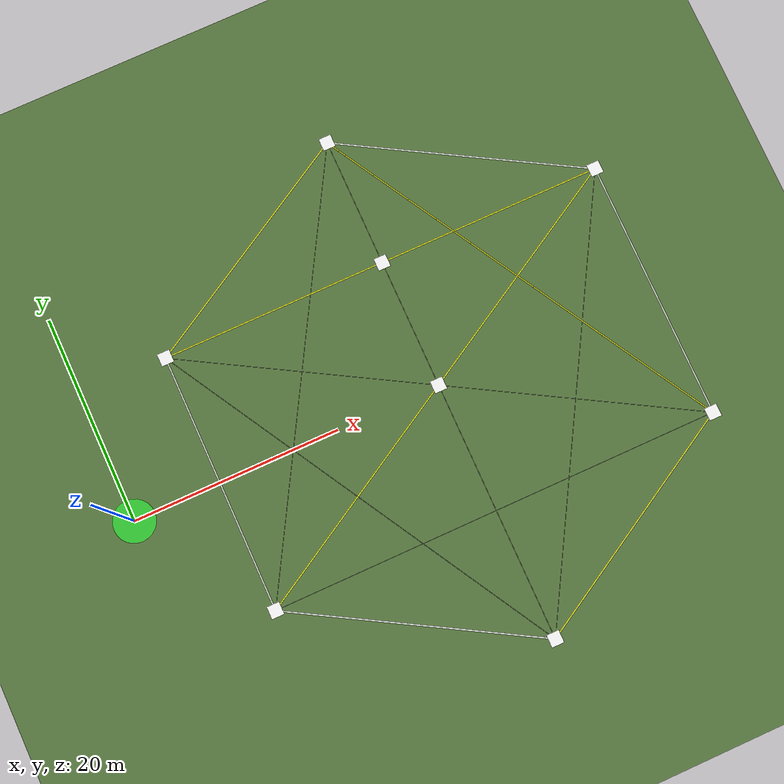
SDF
<?xml version="1.0" encoding="UTF-8"?>
<sdf version="1.9">
  <world name="default">
    <physics type="ode">
      <max_step_size>0.004</max_step_size>
      <real_time_factor>1.0</real_time_factor>
      <real_time_update_rate>250</real_time_update_rate>
    </physics>
    <gravity>0 0 -9.8</gravity>
    <magnetic_field>6e-06 2.3e-05 -4.2e-05</magnetic_field>
    <atmosphere type="adiabatic"/>
    <scene>
      <grid>false</grid>
      <ambient>0.5 0.5 0.5 1</ambient>
      <background>0.6 0.8 1.0 1</background>
      <shadows>true</shadows>
    </scene>

    <model name="ground_plane">
      <static>true</static>
      <link name="link">
        <collision name="collision">
          <geometry><plane><normal>0 0 1</normal><size>1 1</size></plane></geometry>
          <surface><friction><ode/></friction><bounce/><contact/></surface>
        </collision>
        <visual name="visual">
          <geometry><plane><normal>0 0 1</normal><size>500 500</size></plane></geometry>
          <material>
            <ambient>0.35 0.48 0.25 1</ambient>
            <diffuse>0.35 0.48 0.25 1</diffuse>
            <specular>0.1 0.1 0.1 1</specular>
          </material>
        </visual>
        <pose>0 0 0 0 0 0</pose>
        <inertial>
          <pose>0 0 0 0 0 0</pose>
          <mass>1</mass>
          <inertia><ixx>1</ixx><ixy>0</ixy><ixz>0</ixz><iyy>1</iyy><iyz>0</iyz><izz>1</izz></inertia>
        </inertial>
        <enable_wind>false</enable_wind>
      </link>
      <pose>0 0 0 0 0 0</pose>
      <self_collide>false</self_collide>
    </model>

    <light name="sunUTC" type="directional">
      <pose>0 0 500 0 0 0</pose>
      <cast_shadows>true</cast_shadows>
      <intensity>1</intensity>
      <direction>0.001 0.625 -0.78</direction>
      <diffuse>0.904 0.904 0.904 1</diffuse>
      <specular>0.271 0.271 0.271 1</specular>
      <attenuation>
        <range>2000</range><linear>0</linear><constant>1</constant><quadratic>0</quadratic>
      </attenuation>
      <spot><inner_angle>0</inner_angle><outer_angle>0</outer_angle><falloff>0</falloff></spot>
    </light>

    <spherical_coordinates>
      <surface_model>EARTH_WGS84</surface_model>
      <world_frame_orientation>ENU</world_frame_orientation>
      <latitude_deg>47.397971057728974</latitude_deg>
      <longitude_deg>8.546163739800146</longitude_deg>
      <elevation>0</elevation>
    </spherical_coordinates>

    <!-- HOME -->
    <model name="home_marker">
      <static>true</static>
      <pose>0 0 0.005 0 0 0</pose>
      <link name="link">
        <visual name="v">
          <geometry><cylinder><radius>2.0</radius><length>0.01</length></cylinder></geometry>
          <material><ambient>0.2 0.8 0.2 0.9</ambient><diffuse>0.2 0.8 0.2 0.9</diffuse></material>
        </visual>
      </link>
    </model>

    <model name="g_1_2"><static>true</static>
      <pose>8.35 0.0 0.002 0 0 1.5707963267948966</pose>
      <link name="l"><visual name="v">
        <geometry><box><size>25.0 0.04 0.002</size></box></geometry>
        <material><ambient>0.5 0.5 0.5 0.5</ambient><diffuse>0.5 0.5 0.5 0.5</diffuse></material>
      </visual></link>
    </model>

    <model name="g_1_3"><static>true</static>
      <pose>19.175 6.25 0.002 0 0 1.0472102531819656</pose>
      <link name="l"><visual name="v">
        <geometry><box><size>43.300952645409545 0.04 0.002</size></box></geometry>
        <material><ambient>0.5 0.5 0.5 0.5</ambient><diffuse>0.5 0.5 0.5 0.5</diffuse></material>
      </visual></link>
    </model>

    <model name="g_1_4"><static>true</static>
      <pose>30.0 0.0 0.002 0 0 0.5236114777699694</pose>
      <link name="l"><visual name="v">
        <geometry><box><size>49.99889998789973 0.04 0.002</size></box></geometry>
        <material><ambient>0.5 0.5 0.5 0.5</ambient><diffuse>0.5 0.5 0.5 0.5</diffuse></material>
      </visual></link>
    </model>

    <model name="g_1_5"><static>true</static>
      <pose>30.0 -12.5 0.002 0 0 0.0</pose>
      <link name="l"><visual name="v">
        <geometry><box><size>43.3 0.04 0.002</size></box></geometry>
        <material><ambient>0.5 0.5 0.5 0.5</ambient><diffuse>0.5 0.5 0.5 0.5</diffuse></material>
      </visual></link>
    </model>

    <model name="g_1_6"><static>true</static>
      <pose>19.175 -18.75 0.002 0 0 -0.5236114777699694</pose>
      <link name="l"><visual name="v">
        <geometry><box><size>24.999449993949867 0.04 0.002</size></box></geometry>
        <material><ambient>0.5 0.5 0.5 0.5</ambient><diffuse>0.5 0.5 0.5 0.5</diffuse></material>
      </visual></link>
    </model>

    <model name="g_2_3"><static>true</static>
      <pose>19.175 18.75 0.002 0 0 0.5236114777699694</pose>
      <link name="l"><visual name="v">
        <geometry><box><size>24.999449993949867 0.04 0.002</size></box></geometry>
        <material><ambient>0.5 0.5 0.5 0.5</ambient><diffuse>0.5 0.5 0.5 0.5</diffuse></material>
      </visual></link>
    </model>

    <model name="g_2_4"><static>true</static>
      <pose>30.0 12.5 0.002 0 0 0.0</pose>
      <link name="l"><visual name="v">
        <geometry><box><size>43.3 0.04 0.002</size></box></geometry>
        <material><ambient>0.5 0.5 0.5 0.5</ambient><diffuse>0.5 0.5 0.5 0.5</diffuse></material>
      </visual></link>
    </model>

    <model name="g_2_5"><static>true</static>
      <pose>30.0 0.0 0.002 0 0 -0.5236114777699694</pose>
      <link name="l"><visual name="v">
        <geometry><box><size>49.99889998789973 0.04 0.002</size></box></geometry>
        <material><ambient>0.5 0.5 0.5 0.5</ambient><diffuse>0.5 0.5 0.5 0.5</diffuse></material>
      </visual></link>
    </model>

    <model name="g_2_6"><static>true</static>
      <pose>19.175 -6.25 0.002 0 0 -1.0472102531819656</pose>
      <link name="l"><visual name="v">
        <geometry><box><size>43.300952645409545 0.04 0.002</size></box></geometry>
        <material><ambient>0.5 0.5 0.5 0.5</ambient><diffuse>0.5 0.5 0.5 0.5</diffuse></material>
      </visual></link>
    </model>

    <model name="g_3_4"><static>true</static>
      <pose>40.825 18.75 0.002 0 0 -0.5236114777699694</pose>
      <link name="l"><visual name="v">
        <geometry><box><size>24.999449993949867 0.04 0.002</size></box></geometry>
        <material><ambient>0.5 0.5 0.5 0.5</ambient><diffuse>0.5 0.5 0.5 0.5</diffuse></material>
      </visual></link>
    </model>

    <model name="g_3_5"><static>true</static>
      <pose>40.825 6.25 0.002 0 0 -1.0472102531819656</pose>
      <link name="l"><visual name="v">
        <geometry><box><size>43.300952645409545 0.04 0.002</size></box></geometry>
        <material><ambient>0.5 0.5 0.5 0.5</ambient><diffuse>0.5 0.5 0.5 0.5</diffuse></material>
      </visual></link>
    </model>

    <model name="g_3_6"><static>true</static>
      <pose>30.0 0.0 0.002 0 0 -1.5707963267948966</pose>
      <link name="l"><visual name="v">
        <geometry><box><size>50.0 0.04 0.002</size></box></geometry>
        <material><ambient>0.5 0.5 0.5 0.5</ambient><diffuse>0.5 0.5 0.5 0.5</diffuse></material>
      </visual></link>
    </model>

    <model name="g_4_5"><static>true</static>
      <pose>51.65 0.0 0.002 0 0 -1.5707963267948966</pose>
      <link name="l"><visual name="v">
        <geometry><box><size>25.0 0.04 0.002</size></box></geometry>
        <material><ambient>0.5 0.5 0.5 0.5</ambient><diffuse>0.5 0.5 0.5 0.5</diffuse></material>
      </visual></link>
    </model>

    <model name="g_4_6"><static>true</static>
      <pose>40.825 -6.25 0.002 0 0 -2.0943824004078277</pose>
      <link name="l"><visual name="v">
        <geometry><box><size>43.300952645409545 0.04 0.002</size></box></geometry>
        <material><ambient>0.5 0.5 0.5 0.5</ambient><diffuse>0.5 0.5 0.5 0.5</diffuse></material>
      </visual></link>
    </model>

    <model name="g_5_6"><static>true</static>
      <pose>40.825 -18.75 0.002 0 0 -2.617981175819824</pose>
      <link name="l"><visual name="v">
        <geometry><box><size>24.999449993949867 0.04 0.002</size></box></geometry>
        <material><ambient>0.5 0.5 0.5 0.5</ambient><diffuse>0.5 0.5 0.5 0.5</diffuse></material>
      </visual></link>
    </model>

    <model name="hex_0"><static>true</static>
      <pose>40.825 18.75 0.005 0 0 -0.5236114777699694</pose>
      <link name="l"><visual name="v">
        <geometry><box><size>24.999449993949867 0.15 0.005</size></box></geometry>
        <material><ambient>1 1 1 0.8</ambient><diffuse>1 1 1 0.8</diffuse></material>
      </visual></link>
    </model>

    <model name="hex_1"><static>true</static>
      <pose>51.65 0.0 0.005 0 0 -1.5707963267948966</pose>
      <link name="l"><visual name="v">
        <geometry><box><size>25.0 0.15 0.005</size></box></geometry>
        <material><ambient>1 1 1 0.8</ambient><diffuse>1 1 1 0.8</diffuse></material>
      </visual></link>
    </model>

    <model name="hex_2"><static>true</static>
      <pose>40.825 -18.75 0.005 0 0 -2.617981175819824</pose>
      <link name="l"><visual name="v">
        <geometry><box><size>24.999449993949867 0.15 0.005</size></box></geometry>
        <material><ambient>1 1 1 0.8</ambient><diffuse>1 1 1 0.8</diffuse></material>
      </visual></link>
    </model>

    <model name="hex_3"><static>true</static>
      <pose>19.175 -18.75 0.005 0 0 2.617981175819824</pose>
      <link name="l"><visual name="v">
        <geometry><box><size>24.999449993949867 0.15 0.005</size></box></geometry>
        <material><ambient>1 1 1 0.8</ambient><diffuse>1 1 1 0.8</diffuse></material>
      </visual></link>
    </model>

    <model name="hex_4"><static>true</static>
      <pose>8.35 0.0 0.005 0 0 1.5707963267948966</pose>
      <link name="l"><visual name="v">
        <geometry><box><size>25.0 0.15 0.005</size></box></geometry>
        <material><ambient>1 1 1 0.8</ambient><diffuse>1 1 1 0.8</diffuse></material>
      </visual></link>
    </model>

    <model name="hex_5"><static>true</static>
      <pose>19.175 18.75 0.005 0 0 0.5236114777699694</pose>
      <link name="l"><visual name="v">
        <geometry><box><size>24.999449993949867 0.15 0.005</size></box></geometry>
        <material><ambient>1 1 1 0.8</ambient><diffuse>1 1 1 0.8</diffuse></material>
      </visual></link>
    </model>

    <model name="route_1_4"><static>true</static>
      <pose>30.0 0.0 0.006 0 0 0.5236114777699694</pose>
      <link name="l"><visual name="v">
        <geometry><box><size>49.99889998789973 0.12 0.006</size></box></geometry>
        <material><ambient>0.9 0.9 0.1 1</ambient><diffuse>0.9 0.9 0.1 1</diffuse></material>
      </visual></link>
    </model>

    <model name="route_4_2"><static>true</static>
      <pose>30.0 12.5 0.006 0 0 3.141592653589793</pose>
      <link name="l"><visual name="v">
        <geometry><box><size>43.3 0.12 0.006</size></box></geometry>
        <material><ambient>0.9 0.9 0.1 1</ambient><diffuse>0.9 0.9 0.1 1</diffuse></material>
      </visual></link>
    </model>

    <model name="route_2_3"><static>true</static>
      <pose>19.175 18.75 0.006 0 0 0.5236114777699694</pose>
      <link name="l"><visual name="v">
        <geometry><box><size>24.999449993949867 0.12 0.006</size></box></geometry>
        <material><ambient>0.9 0.9 0.1 1</ambient><diffuse>0.9 0.9 0.1 1</diffuse></material>
      </visual></link>
    </model>

    <model name="route_3_5"><static>true</static>
      <pose>40.825 6.25 0.006 0 0 -1.0472102531819656</pose>
      <link name="l"><visual name="v">
        <geometry><box><size>43.300952645409545 0.12 0.006</size></box></geometry>
        <material><ambient>0.9 0.9 0.1 1</ambient><diffuse>0.9 0.9 0.1 1</diffuse></material>
      </visual></link>
    </model>

    <model name="route_5_6"><static>true</static>
      <pose>40.825 -18.75 0.006 0 0 -2.617981175819824</pose>
      <link name="l"><visual name="v">
        <geometry><box><size>24.999449993949867 0.12 0.006</size></box></geometry>
        <material><ambient>0.9 0.9 0.1 1</ambient><diffuse>0.9 0.9 0.1 1</diffuse></material>
      </visual></link>
    </model>

    <model name="qr1">
      <static>true</static>
      <pose>8.35 -12.5 0.01 0 0 0</pose>
      <link name="base">
        <visual name="qr_face">
          <geometry>
            <box><size>1.2 1.2 0.02</size></box>
          </geometry>
          <material>
            <ambient>1 1 1 1</ambient>
            <diffuse>1 1 1 1</diffuse>
            <specular>0 0 0 1</specular>
            <pbr>
              <metal>
                <albedo_map>/home/musyan/Desktop/swarm/gazebo/textures/qr1.png</albedo_map>
                <metalness>0.0</metalness>
                <roughness>1.0</roughness>
              </metal>
            </pbr>
          </material>
        </visual>
        <collision name="col">
          <geometry><box><size>1.2 1.2 0.02</size></box></geometry>
        </collision>
      </link>
    </model>

    <model name="qr2">
      <static>true</static>
      <pose>8.35 12.5 0.01 0 0 0</pose>
      <link name="base">
        <visual name="qr_face">
          <geometry>
            <box><size>1.2 1.2 0.02</size></box>
          </geometry>
          <material>
            <ambient>1 1 1 1</ambient>
            <diffuse>1 1 1 1</diffuse>
            <specular>0 0 0 1</specular>
            <pbr>
              <metal>
                <albedo_map>/home/musyan/Desktop/swarm/gazebo/textures/qr2.png</albedo_map>
                <metalness>0.0</metalness>
                <roughness>1.0</roughness>
              </metal>
            </pbr>
          </material>
        </visual>
        <collision name="col">
          <geometry><box><size>1.2 1.2 0.02</size></box></geometry>
        </collision>
      </link>
    </model>

    <model name="qr3">
      <static>true</static>
      <pose>30.0 25.0 0.01 0 0 0</pose>
      <link name="base">
        <visual name="qr_face">
          <geometry>
            <box><size>1.2 1.2 0.02</size></box>
          </geometry>
          <material>
            <ambient>1 1 1 1</ambient>
            <diffuse>1 1 1 1</diffuse>
            <specular>0 0 0 1</specular>
            <pbr>
              <metal>
                <albedo_map>/home/musyan/Desktop/swarm/gazebo/textures/qr3.png</albedo_map>
                <metalness>0.0</metalness>
                <roughness>1.0</roughness>
              </metal>
            </pbr>
          </material>
        </visual>
        <collision name="col">
          <geometry><box><size>1.2 1.2 0.02</size></box></geometry>
        </collision>
      </link>
    </model>

    <model name="qr4">
      <static>true</static>
      <pose>51.65 12.5 0.01 0 0 0</pose>
      <link name="base">
        <visual name="qr_face">
          <geometry>
            <box><size>1.2 1.2 0.02</size></box>
          </geometry>
          <material>
            <ambient>1 1 1 1</ambient>
            <diffuse>1 1 1 1</diffuse>
            <specular>0 0 0 1</specular>
            <pbr>
              <metal>
                <albedo_map>/home/musyan/Desktop/swarm/gazebo/textures/qr4.png</albedo_map>
                <metalness>0.0</metalness>
                <roughness>1.0</roughness>
              </metal>
            </pbr>
          </material>
        </visual>
        <collision name="col">
          <geometry><box><size>1.2 1.2 0.02</size></box></geometry>
        </collision>
      </link>
    </model>

    <model name="qr5">
      <static>true</static>
      <pose>51.65 -12.5 0.01 0 0 0</pose>
      <link name="base">
        <visual name="qr_face">
          <geometry>
            <box><size>1.2 1.2 0.02</size></box>
          </geometry>
          <material>
            <ambient>1 1 1 1</ambient>
            <diffuse>1 1 1 1</diffuse>
            <specular>0 0 0 1</specular>
            <pbr>
              <metal>
                <albedo_map>/home/musyan/Desktop/swarm/gazebo/textures/qr5.png</albedo_map>
                <metalness>0.0</metalness>
                <roughness>1.0</roughness>
              </metal>
            </pbr>
          </material>
        </visual>
        <collision name="col">
          <geometry><box><size>1.2 1.2 0.02</size></box></geometry>
        </collision>
      </link>
    </model>

    <model name="qr6">
      <static>true</static>
      <pose>30.0 -25.0 0.01 0 0 0</pose>
      <link name="base">
        <visual name="qr_face">
          <geometry>
            <box><size>1.2 1.2 0.02</size></box>
          </geometry>
          <material>
            <ambient>1 1 1 1</ambient>
            <diffuse>1 1 1 1</diffuse>
            <specular>0 0 0 1</specular>
            <pbr>
              <metal>
                <albedo_map>/home/musyan/Desktop/swarm/gazebo/textures/qr6.png</albedo_map>
                <metalness>0.0</metalness>
                <roughness>1.0</roughness>
              </metal>
            </pbr>
          </material>
        </visual>
        <collision name="col">
          <geometry><box><size>1.2 1.2 0.02</size></box></geometry>
        </collision>
      </link>
    </model>

    <model name="zone_blue">
      <static>true</static>
      <pose>30.0 0.0 0.005 0 0 0</pose>
      <link name="link">
        <visual name="surface">
          <geometry><box><size>1.2 1.2 0.01</size></box></geometry>
          <material>
            <diffuse>1 1 1 1</diffuse>
            <specular>0.1 0.1 0.1 1</specular>
            <pbr>
              <metal>
                <albedo_map>/home/musyan/Desktop/swarm/gazebo/textures/zone_blue.png</albedo_map>
              </metal>
            </pbr>
          </material>
        </visual>
        <collision name="col">
          <geometry><box><size>1.2 1.2 0.01</size></box></geometry>
        </collision>
      </link>
    </model>

    <model name="zone_red">
      <static>true</static>
      <pose>30.0 12.5 0.005 0 0 0</pose>
      <link name="link">
        <visual name="surface">
          <geometry><box><size>1.2 1.2 0.01</size></box></geometry>
          <material>
            <diffuse>1 1 1 1</diffuse>
            <specular>0.1 0.1 0.1 1</specular>
            <pbr>
              <metal>
                <albedo_map>/home/musyan/Desktop/swarm/gazebo/textures/zone_red.png</albedo_map>
              </metal>
            </pbr>
          </material>
        </visual>
        <collision name="col">
          <geometry><box><size>1.2 1.2 0.01</size></box></geometry>
        </collision>
      </link>
    </model>

  </world>
</sdf>
